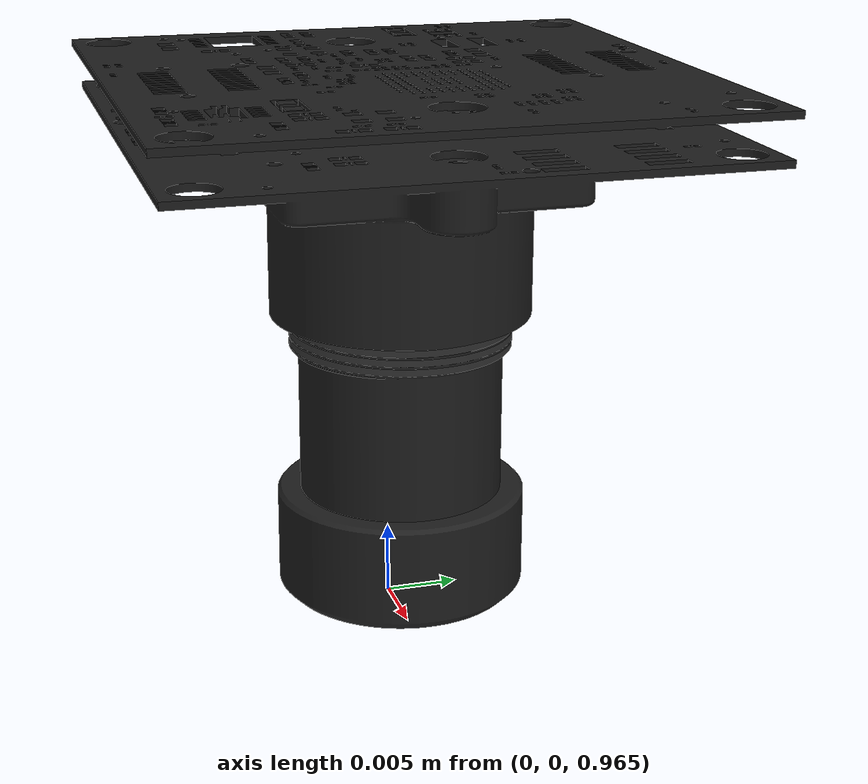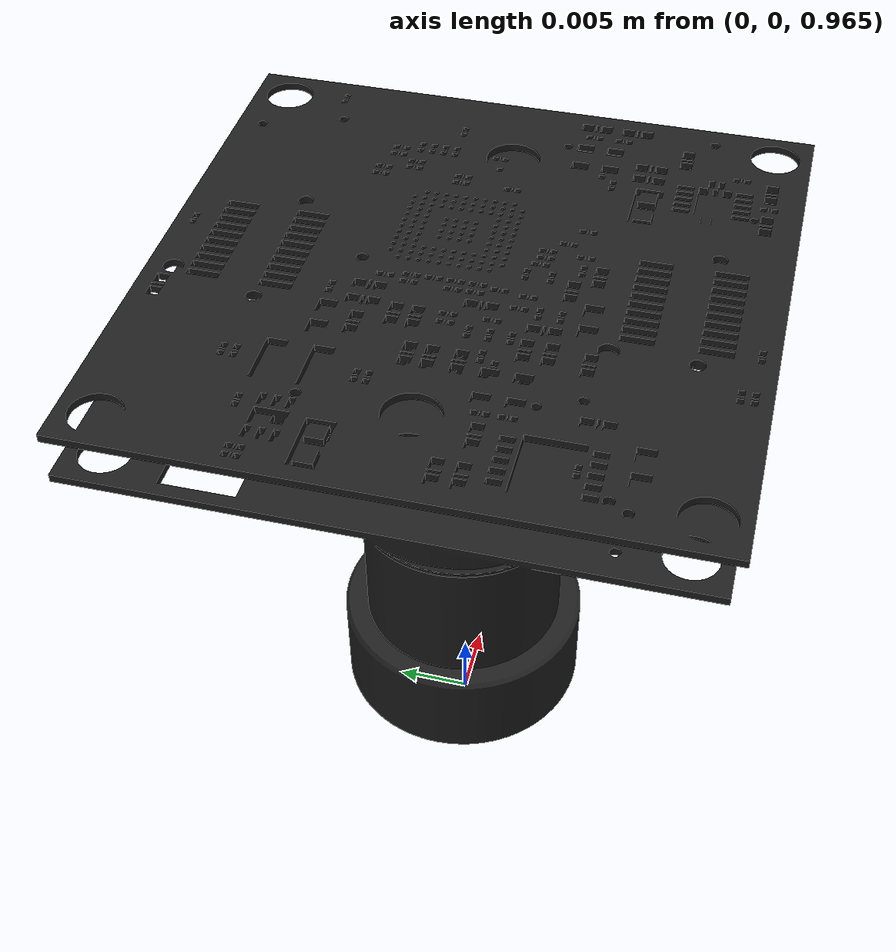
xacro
<?xml version="1.0"?>
<robot name="gscam" xmlns:xacro="http://ros.org/wiki/xacro">

  <xacro:include filename="$(find model_description)/urdf/common.xacro"/>
  <xacro:include filename="$(find model_description)/urdf/materials.xacro"/>
  <xacro:include filename="$(find model_description)/urdf/sensor/camera.urdf.xacro"/>
  <xacro:include filename="$(find model_description)/urdf/sensor/camera.gazebo.xacro"/>

  <link name="world"/>
  <xacro:camera_link_v0 parent="world" name="camera_link">
	<origin xyz="0 0 1.0" rpy="0 ${M_PI/2} 0"/>
  </xacro:camera_link_v0>

  <xacro:gscam_gazebo name="camera_link"/>

</robot>

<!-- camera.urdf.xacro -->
<robot xmlns:xacro="http://ros.org/wiki/xacro">

  <xacro:include filename="$(find model_description)/urdf/common.xacro"/>

  <xacro:macro name="camera_link_v0" params="parent name *joint_origin">
	<joint name="${name}_joint" type="fixed">
	  <insert_block name="joint_origin"/>
	  <parent link="${parent}"/>
	  <child link="${name}"/>
	</joint>

	<link name="${name}">
	  <visual>
		<origin rpy="0 ${M_PI/2} 0"/>
		<material name="black"/>
		<geometry>
		  <mesh filename="package://model_description/meshes/camera.stl" scale="0.05 0.05 0.05"/>
		</geometry>
	  </visual>
	  <collision>
		<origin rpy="0 ${M_PI/2} 0"/>
		<geometry>
		  <mesh filename="package://model_description/meshes/camera.stl" scale="0.05 0.05 0.05"/>
		</geometry>
	  </collision>
	  <inertial>
		<mass value="0.07"/>
		<inertia ixx="0.001" ixy="0" ixz="0"
				 iyy="0.001" iyz="0"
				 izz="0.001" />
	  </inertial>
	</link>
  </xacro:macro>
</robot>
